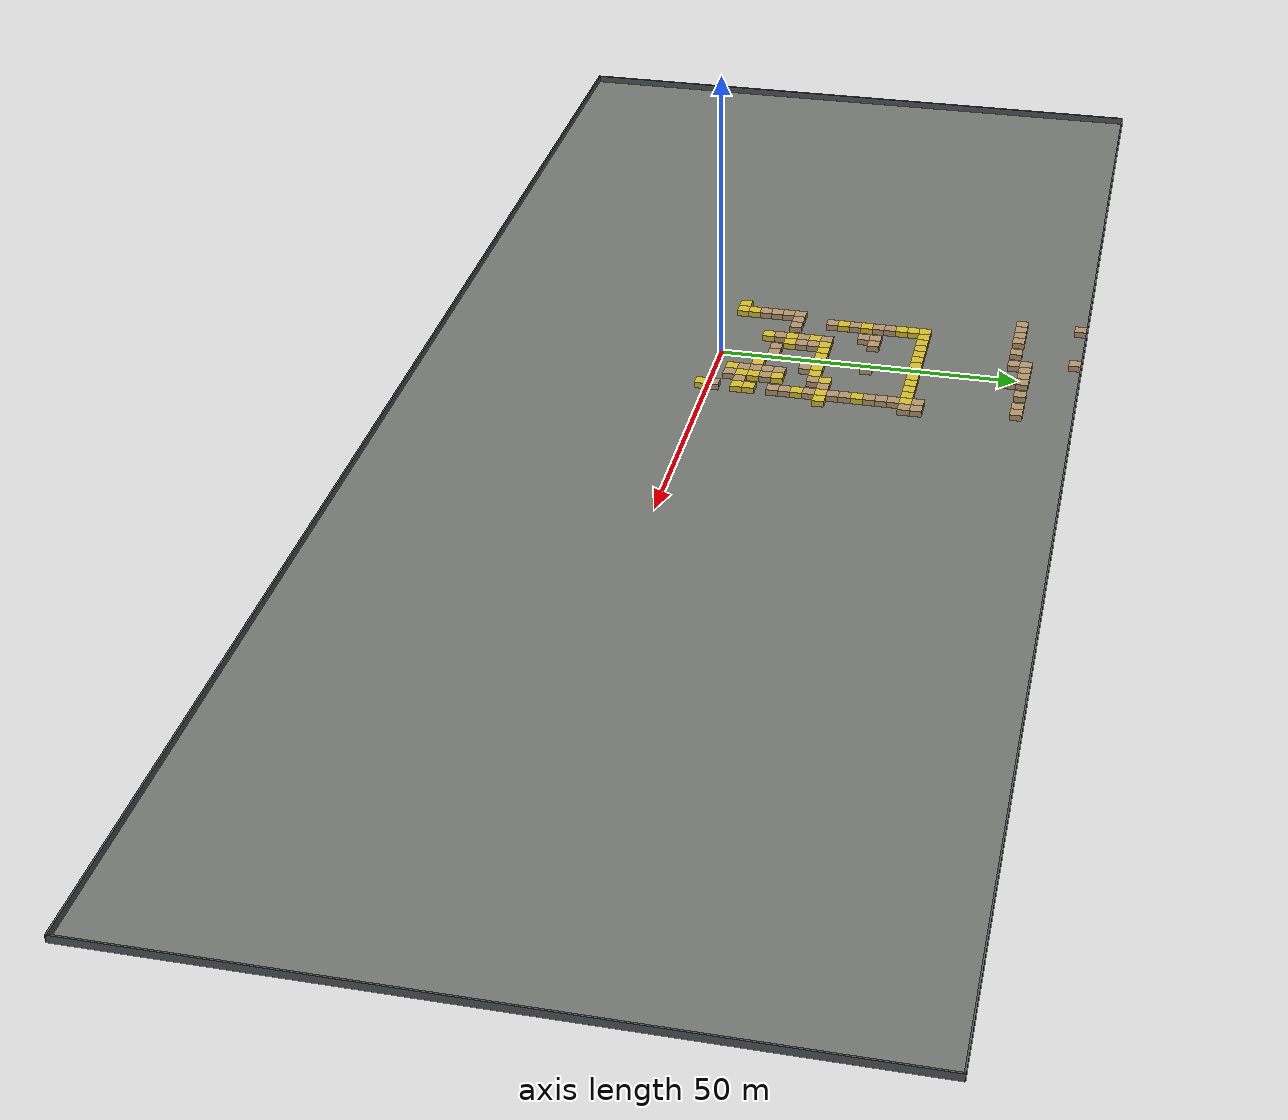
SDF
<sdf version="1.6">
 <world name="map5_factory_approx">
  <model name="map5_floor">
   <static>true</static>
   <link name="floor">
    <pose>23.740 5.509 -0.020 0 0 0</pose>
    <collision name="collision"><geometry><box><size>265.900 108.900 0.040</size></box></geometry></collision>
    <visual name="visual">
     <geometry><box><size>265.900 108.900 0.040</size></box></geometry>
     <material><ambient>0.45 0.46 0.44 1</ambient><diffuse>0.45 0.46 0.44 1</diffuse></material>
    </visual>
   </link>
  </model>
  <model name="map5_perimeter_walls">
   <static>true</static>
   <link name="west_wall">
    <pose>-109.335 5.509 0.600 0 0 0</pose>
    <collision name="collision"><geometry><box><size>0.250 109.400 1.200</size></box></geometry></collision>
    <visual name="visual">
     <geometry><box><size>0.250 109.400 1.200</size></box></geometry>
     <material><ambient>0.32 0.34 0.36 1</ambient><diffuse>0.32 0.34 0.36 1</diffuse></material>
    </visual>
   </link>
   <link name="east_wall">
    <pose>156.815 5.509 0.600 0 0 0</pose>
    <collision name="collision"><geometry><box><size>0.250 109.400 1.200</size></box></geometry></collision>
    <visual name="visual">
     <geometry><box><size>0.250 109.400 1.200</size></box></geometry>
     <material><ambient>0.32 0.34 0.36 1</ambient><diffuse>0.32 0.34 0.36 1</diffuse></material>
    </visual>
   </link>
   <link name="south_wall">
    <pose>23.740 -49.066 0.600 0 0 0</pose>
    <collision name="collision"><geometry><box><size>266.400 0.250 1.200</size></box></geometry></collision>
    <visual name="visual">
     <geometry><box><size>266.400 0.250 1.200</size></box></geometry>
     <material><ambient>0.32 0.34 0.36 1</ambient><diffuse>0.32 0.34 0.36 1</diffuse></material>
    </visual>
   </link>
   <link name="north_wall">
    <pose>23.740 60.084 0.600 0 0 0</pose>
    <collision name="collision"><geometry><box><size>266.400 0.250 1.200</size></box></geometry></collision>
    <visual name="visual">
     <geometry><box><size>266.400 0.250 1.200</size></box></geometry>
     <material><ambient>0.32 0.34 0.36 1</ambient><diffuse>0.32 0.34 0.36 1</diffuse></material>
    </visual>
   </link>
  </model>
  <model name="map5_obstacle_blocks">
   <static>true</static>
   <link name="obs_0055_0026">
    <pose>1.790 6.959 0.500 0 0 0</pose>
    <collision name="collision"><geometry><box><size>2.000 2.000 1.000</size></box></geometry></collision>
    <visual name="visual">
     <geometry><box><size>2.000 2.000 1.000</size></box></geometry>
     <material><ambient>0.84 0.74 0.18 1</ambient><diffuse>0.84 0.74 0.18 1</diffuse></material>
    </visual>
   </link>
   <link name="obs_0058_0024">
    <pose>7.790 10.959 0.500 0 0 0</pose>
    <collision name="collision"><geometry><box><size>2.000 2.000 1.000</size></box></geometry></collision>
    <visual name="visual">
     <geometry><box><size>2.000 2.000 1.000</size></box></geometry>
     <material><ambient>0.84 0.74 0.18 1</ambient><diffuse>0.84 0.74 0.18 1</diffuse></material>
    </visual>
   </link>
   <link name="obs_0060_0013">
    <pose>11.790 32.959 0.500 0 0 0</pose>
    <collision name="collision"><geometry><box><size>2.000 2.000 1.000</size></box></geometry></collision>
    <visual name="visual">
     <geometry><box><size>2.000 2.000 1.000</size></box></geometry>
     <material><ambient>0.84 0.74 0.18 1</ambient><diffuse>0.84 0.74 0.18 1</diffuse></material>
    </visual>
   </link>
   <link name="obs_0055_0013">
    <pose>1.790 32.959 0.500 0 0 0</pose>
    <collision name="collision"><geometry><box><size>2.000 2.000 1.000</size></box></geometry></collision>
    <visual name="visual">
     <geometry><box><size>2.000 2.000 1.000</size></box></geometry>
     <material><ambient>0.84 0.74 0.18 1</ambient><diffuse>0.84 0.74 0.18 1</diffuse></material>
    </visual>
   </link>
   <link name="obs_0058_0026">
    <pose>7.790 6.959 0.500 0 0 0</pose>
    <collision name="collision"><geometry><box><size>2.000 2.000 1.000</size></box></geometry></collision>
    <visual name="visual">
     <geometry><box><size>2.000 2.000 1.000</size></box></geometry>
     <material><ambient>0.84 0.74 0.18 1</ambient><diffuse>0.84 0.74 0.18 1</diffuse></material>
    </visual>
   </link>
   <link name="obs_0056_0026">
    <pose>3.790 6.959 0.500 0 0 0</pose>
    <collision name="collision"><geometry><box><size>2.000 2.000 1.000</size></box></geometry></collision>
    <visual name="visual">
     <geometry><box><size>2.000 2.000 1.000</size></box></geometry>
     <material><ambient>0.84 0.74 0.18 1</ambient><diffuse>0.84 0.74 0.18 1</diffuse></material>
    </visual>
   </link>
   <link name="obs_0058_0027">
    <pose>7.790 4.959 0.500 0 0 0</pose>
    <collision name="collision"><geometry><box><size>2.000 2.000 1.000</size></box></geometry></collision>
    <visual name="visual">
     <geometry><box><size>2.000 2.000 1.000</size></box></geometry>
     <material><ambient>0.84 0.74 0.18 1</ambient><diffuse>0.84 0.74 0.18 1</diffuse></material>
    </visual>
   </link>
   <link name="obs_0051_0013">
    <pose>-6.210 32.959 0.500 0 0 0</pose>
    <collision name="collision"><geometry><box><size>2.000 2.000 1.000</size></box></geometry></collision>
    <visual name="visual">
     <geometry><box><size>2.000 2.000 1.000</size></box></geometry>
     <material><ambient>0.84 0.74 0.18 1</ambient><diffuse>0.84 0.74 0.18 1</diffuse></material>
    </visual>
   </link>
   <link name="obs_0050_0013">
    <pose>-8.210 32.959 0.500 0 0 0</pose>
    <collision name="collision"><geometry><box><size>2.000 2.000 1.000</size></box></geometry></collision>
    <visual name="visual">
     <geometry><box><size>2.000 2.000 1.000</size></box></geometry>
     <material><ambient>0.84 0.74 0.18 1</ambient><diffuse>0.84 0.74 0.18 1</diffuse></material>
    </visual>
   </link>
   <link name="obs_0048_0013">
    <pose>-12.210 32.959 0.500 0 0 0</pose>
    <collision name="collision"><geometry><box><size>2.000 2.000 1.000</size></box></geometry></collision>
    <visual name="visual">
     <geometry><box><size>2.000 2.000 1.000</size></box></geometry>
     <material><ambient>0.84 0.74 0.18 1</ambient><diffuse>0.84 0.74 0.18 1</diffuse></material>
    </visual>
   </link>
   <link name="obs_0049_0013">
    <pose>-10.210 32.959 0.500 0 0 0</pose>
    <collision name="collision"><geometry><box><size>2.000 2.000 1.000</size></box></geometry></collision>
    <visual name="visual">
     <geometry><box><size>2.000 2.000 1.000</size></box></geometry>
     <material><ambient>0.84 0.74 0.18 1</ambient><diffuse>0.84 0.74 0.18 1</diffuse></material>
    </visual>
   </link>
   <link name="obs_0060_0026">
    <pose>11.790 6.959 0.500 0 0 0</pose>
    <collision name="collision"><geometry><box><size>2.000 2.000 1.000</size></box></geometry></collision>
    <visual name="visual">
     <geometry><box><size>2.000 2.000 1.000</size></box></geometry>
     <material><ambient>0.84 0.74 0.18 1</ambient><diffuse>0.84 0.74 0.18 1</diffuse></material>
    </visual>
   </link>
   <link name="obs_0056_0013">
    <pose>3.790 32.959 0.500 0 0 0</pose>
    <collision name="collision"><geometry><box><size>2.000 2.000 1.000</size></box></geometry></collision>
    <visual name="visual">
     <geometry><box><size>2.000 2.000 1.000</size></box></geometry>
     <material><ambient>0.84 0.74 0.18 1</ambient><diffuse>0.84 0.74 0.18 1</diffuse></material>
    </visual>
   </link>
   <link name="obs_0060_0030">
    <pose>11.790 -1.041 0.500 0 0 0</pose>
    <collision name="collision"><geometry><box><size>2.000 2.000 1.000</size></box></geometry></collision>
    <visual name="visual">
     <geometry><box><size>2.000 2.000 1.000</size></box></geometry>
     <material><ambient>0.84 0.74 0.18 1</ambient><diffuse>0.84 0.74 0.18 1</diffuse></material>
    </visual>
   </link>
   <link name="obs_0060_0017">
    <pose>11.790 24.959 0.500 0 0 0</pose>
    <collision name="collision"><geometry><box><size>2.000 2.000 1.000</size></box></geometry></collision>
    <visual name="visual">
     <geometry><box><size>2.000 2.000 1.000</size></box></geometry>
     <material><ambient>0.84 0.74 0.18 1</ambient><diffuse>0.84 0.74 0.18 1</diffuse></material>
    </visual>
   </link>
   <link name="obs_0057_0028">
    <pose>5.790 2.959 0.500 0 0 0</pose>
    <collision name="collision"><geometry><box><size>2.000 2.000 1.000</size></box></geometry></collision>
    <visual name="visual">
     <geometry><box><size>2.000 2.000 1.000</size></box></geometry>
     <material><ambient>0.84 0.74 0.18 1</ambient><diffuse>0.84 0.74 0.18 1</diffuse></material>
    </visual>
   </link>
   <link name="obs_0058_0013">
    <pose>7.790 32.959 0.500 0 0 0</pose>
    <collision name="collision"><geometry><box><size>2.000 2.000 1.000</size></box></geometry></collision>
    <visual name="visual">
     <geometry><box><size>2.000 2.000 1.000</size></box></geometry>
     <material><ambient>0.84 0.74 0.18 1</ambient><diffuse>0.84 0.74 0.18 1</diffuse></material>
    </visual>
   </link>
   <link name="obs_0059_0013">
    <pose>9.790 32.959 0.500 0 0 0</pose>
    <collision name="collision"><geometry><box><size>2.000 2.000 1.000</size></box></geometry></collision>
    <visual name="visual">
     <geometry><box><size>2.000 2.000 1.000</size></box></geometry>
     <material><ambient>0.84 0.74 0.18 1</ambient><diffuse>0.84 0.74 0.18 1</diffuse></material>
    </visual>
   </link>
   <link name="obs_0054_0013">
    <pose>-0.210 32.959 0.500 0 0 0</pose>
    <collision name="collision"><geometry><box><size>2.000 2.000 1.000</size></box></geometry></collision>
    <visual name="visual">
     <geometry><box><size>2.000 2.000 1.000</size></box></geometry>
     <material><ambient>0.84 0.74 0.18 1</ambient><diffuse>0.84 0.74 0.18 1</diffuse></material>
    </visual>
   </link>
   <link name="obs_0053_0013">
    <pose>-2.210 32.959 0.500 0 0 0</pose>
    <collision name="collision"><geometry><box><size>2.000 2.000 1.000</size></box></geometry></collision>
    <visual name="visual">
     <geometry><box><size>2.000 2.000 1.000</size></box></geometry>
     <material><ambient>0.84 0.74 0.18 1</ambient><diffuse>0.84 0.74 0.18 1</diffuse></material>
    </visual>
   </link>
   <link name="obs_0052_0013">
    <pose>-4.210 32.959 0.500 0 0 0</pose>
    <collision name="collision"><geometry><box><size>2.000 2.000 1.000</size></box></geometry></collision>
    <visual name="visual">
     <geometry><box><size>2.000 2.000 1.000</size></box></geometry>
     <material><ambient>0.84 0.74 0.18 1</ambient><diffuse>0.84 0.74 0.18 1</diffuse></material>
    </visual>
   </link>
   <link name="obs_0060_0022">
    <pose>11.790 14.959 0.500 0 0 0</pose>
    <collision name="collision"><geometry><box><size>2.000 2.000 1.000</size></box></geometry></collision>
    <visual name="visual">
     <geometry><box><size>2.000 2.000 1.000</size></box></geometry>
     <material><ambient>0.84 0.74 0.18 1</ambient><diffuse>0.84 0.74 0.18 1</diffuse></material>
    </visual>
   </link>
   <link name="obs_0058_0020">
    <pose>7.790 18.959 0.500 0 0 0</pose>
    <collision name="collision"><geometry><box><size>2.000 2.000 1.000</size></box></geometry></collision>
    <visual name="visual">
     <geometry><box><size>2.000 2.000 1.000</size></box></geometry>
     <material><ambient>0.84 0.74 0.18 1</ambient><diffuse>0.84 0.74 0.18 1</diffuse></material>
    </visual>
   </link>
   <link name="obs_0057_0013">
    <pose>5.790 32.959 0.500 0 0 0</pose>
    <collision name="collision"><geometry><box><size>2.000 2.000 1.000</size></box></geometry></collision>
    <visual name="visual">
     <geometry><box><size>2.000 2.000 1.000</size></box></geometry>
     <material><ambient>0.84 0.74 0.18 1</ambient><diffuse>0.84 0.74 0.18 1</diffuse></material>
    </visual>
   </link>
   <link name="obs_0051_0024">
    <pose>-6.210 10.959 0.500 0 0 0</pose>
    <collision name="collision"><geometry><box><size>2.000 2.000 1.000</size></box></geometry></collision>
    <visual name="visual">
     <geometry><box><size>2.000 2.000 1.000</size></box></geometry>
     <material><ambient>0.84 0.74 0.18 1</ambient><diffuse>0.84 0.74 0.18 1</diffuse></material>
    </visual>
   </link>
   <link name="obs_0057_0021">
    <pose>5.790 16.959 0.500 0 0 0</pose>
    <collision name="collision"><geometry><box><size>2.000 2.000 1.000</size></box></geometry></collision>
    <visual name="visual">
     <geometry><box><size>2.000 2.000 1.000</size></box></geometry>
     <material><ambient>0.84 0.74 0.18 1</ambient><diffuse>0.84 0.74 0.18 1</diffuse></material>
    </visual>
   </link>
   <link name="obs_0053_0021">
    <pose>-2.210 16.959 0.500 0 0 0</pose>
    <collision name="collision"><geometry><box><size>2.000 2.000 1.000</size></box></geometry></collision>
    <visual name="visual">
     <geometry><box><size>2.000 2.000 1.000</size></box></geometry>
     <material><ambient>0.84 0.74 0.18 1</ambient><diffuse>0.84 0.74 0.18 1</diffuse></material>
    </visual>
   </link>
   <link name="obs_0048_0020">
    <pose>-12.210 18.959 0.500 0 0 0</pose>
    <collision name="collision"><geometry><box><size>2.000 2.000 1.000</size></box></geometry></collision>
    <visual name="visual">
     <geometry><box><size>2.000 2.000 1.000</size></box></geometry>
     <material><ambient>0.84 0.74 0.18 1</ambient><diffuse>0.84 0.74 0.18 1</diffuse></material>
    </visual>
   </link>
   <link name="obs_0048_0018">
    <pose>-12.210 22.959 0.500 0 0 0</pose>
    <collision name="collision"><geometry><box><size>2.000 2.000 1.000</size></box></geometry></collision>
    <visual name="visual">
     <geometry><box><size>2.000 2.000 1.000</size></box></geometry>
     <material><ambient>0.84 0.74 0.18 1</ambient><diffuse>0.84 0.74 0.18 1</diffuse></material>
    </visual>
   </link>
   <link name="obs_0047_0028">
    <pose>-14.210 2.959 0.500 0 0 0</pose>
    <collision name="collision"><geometry><box><size>2.000 2.000 1.000</size></box></geometry></collision>
    <visual name="visual">
     <geometry><box><size>2.000 2.000 1.000</size></box></geometry>
     <material><ambient>0.84 0.74 0.18 1</ambient><diffuse>0.84 0.74 0.18 1</diffuse></material>
    </visual>
   </link>
   <link name="obs_0046_0029">
    <pose>-16.210 0.959 0.500 0 0 0</pose>
    <collision name="collision"><geometry><box><size>2.000 2.000 1.000</size></box></geometry></collision>
    <visual name="visual">
     <geometry><box><size>2.000 2.000 1.000</size></box></geometry>
     <material><ambient>0.84 0.74 0.18 1</ambient><diffuse>0.84 0.74 0.18 1</diffuse></material>
    </visual>
   </link>
   <link name="obs_0055_0021">
    <pose>1.790 16.959 0.500 0 0 0</pose>
    <collision name="collision"><geometry><box><size>2.000 2.000 1.000</size></box></geometry></collision>
    <visual name="visual">
     <geometry><box><size>2.000 2.000 1.000</size></box></geometry>
     <material><ambient>0.84 0.74 0.18 1</ambient><diffuse>0.84 0.74 0.18 1</diffuse></material>
    </visual>
   </link>
   <link name="obs_0060_0027">
    <pose>11.790 4.959 0.500 0 0 0</pose>
    <collision name="collision"><geometry><box><size>2.000 2.000 1.000</size></box></geometry></collision>
    <visual name="visual">
     <geometry><box><size>2.000 2.000 1.000</size></box></geometry>
     <material><ambient>0.84 0.74 0.18 1</ambient><diffuse>0.84 0.74 0.18 1</diffuse></material>
    </visual>
   </link>
   <link name="obs_0048_0015">
    <pose>-12.210 28.959 0.500 0 0 0</pose>
    <collision name="collision"><geometry><box><size>2.000 2.000 1.000</size></box></geometry></collision>
    <visual name="visual">
     <geometry><box><size>2.000 2.000 1.000</size></box></geometry>
     <material><ambient>0.84 0.74 0.18 1</ambient><diffuse>0.84 0.74 0.18 1</diffuse></material>
    </visual>
   </link>
   <link name="obs_0056_0021">
    <pose>3.790 16.959 0.500 0 0 0</pose>
    <collision name="collision"><geometry><box><size>2.000 2.000 1.000</size></box></geometry></collision>
    <visual name="visual">
     <geometry><box><size>2.000 2.000 1.000</size></box></geometry>
     <material><ambient>0.84 0.74 0.18 1</ambient><diffuse>0.84 0.74 0.18 1</diffuse></material>
    </visual>
   </link>
   <link name="obs_0051_0026">
    <pose>-6.210 6.959 0.500 0 0 0</pose>
    <collision name="collision"><geometry><box><size>2.000 2.000 1.000</size></box></geometry></collision>
    <visual name="visual">
     <geometry><box><size>2.000 2.000 1.000</size></box></geometry>
     <material><ambient>0.84 0.74 0.18 1</ambient><diffuse>0.84 0.74 0.18 1</diffuse></material>
    </visual>
   </link>
   <link name="obs_0061_0020">
    <pose>13.790 18.959 0.500 0 0 0</pose>
    <collision name="collision"><geometry><box><size>2.000 2.000 1.000</size></box></geometry></collision>
    <visual name="visual">
     <geometry><box><size>2.000 2.000 1.000</size></box></geometry>
     <material><ambient>0.84 0.74 0.18 1</ambient><diffuse>0.84 0.74 0.18 1</diffuse></material>
    </visual>
   </link>
   <link name="obs_0054_0021">
    <pose>-0.210 16.959 0.500 0 0 0</pose>
    <collision name="collision"><geometry><box><size>2.000 2.000 1.000</size></box></geometry></collision>
    <visual name="visual">
     <geometry><box><size>2.000 2.000 1.000</size></box></geometry>
     <material><ambient>0.84 0.74 0.18 1</ambient><diffuse>0.84 0.74 0.18 1</diffuse></material>
    </visual>
   </link>
   <link name="obs_0052_0021">
    <pose>-4.210 16.959 0.500 0 0 0</pose>
    <collision name="collision"><geometry><box><size>2.000 2.000 1.000</size></box></geometry></collision>
    <visual name="visual">
     <geometry><box><size>2.000 2.000 1.000</size></box></geometry>
     <material><ambient>0.84 0.74 0.18 1</ambient><diffuse>0.84 0.74 0.18 1</diffuse></material>
    </visual>
   </link>
   <link name="obs_0052_0024">
    <pose>-4.210 10.959 0.500 0 0 0</pose>
    <collision name="collision"><geometry><box><size>2.000 2.000 1.000</size></box></geometry></collision>
    <visual name="visual">
     <geometry><box><size>2.000 2.000 1.000</size></box></geometry>
     <material><ambient>0.84 0.74 0.18 1</ambient><diffuse>0.84 0.74 0.18 1</diffuse></material>
    </visual>
   </link>
   <link name="obs_0051_0022">
    <pose>-6.210 14.959 0.500 0 0 0</pose>
    <collision name="collision"><geometry><box><size>2.000 2.000 1.000</size></box></geometry></collision>
    <visual name="visual">
     <geometry><box><size>2.000 2.000 1.000</size></box></geometry>
     <material><ambient>0.84 0.74 0.18 1</ambient><diffuse>0.84 0.74 0.18 1</diffuse></material>
    </visual>
   </link>
   <link name="obs_0047_0029">
    <pose>-14.210 0.959 0.500 0 0 0</pose>
    <collision name="collision"><geometry><box><size>2.000 2.000 1.000</size></box></geometry></collision>
    <visual name="visual">
     <geometry><box><size>2.000 2.000 1.000</size></box></geometry>
     <material><ambient>0.84 0.74 0.18 1</ambient><diffuse>0.84 0.74 0.18 1</diffuse></material>
    </visual>
   </link>
   <link name="obs_0048_0014">
    <pose>-12.210 30.959 0.500 0 0 0</pose>
    <collision name="collision"><geometry><box><size>2.000 2.000 1.000</size></box></geometry></collision>
    <visual name="visual">
     <geometry><box><size>2.000 2.000 1.000</size></box></geometry>
     <material><ambient>0.84 0.74 0.18 1</ambient><diffuse>0.84 0.74 0.18 1</diffuse></material>
    </visual>
   </link>
   <link name="obs_0060_0020">
    <pose>11.790 18.959 0.500 0 0 0</pose>
    <collision name="collision"><geometry><box><size>2.000 2.000 1.000</size></box></geometry></collision>
    <visual name="visual">
     <geometry><box><size>2.000 2.000 1.000</size></box></geometry>
     <material><ambient>0.84 0.74 0.18 1</ambient><diffuse>0.84 0.74 0.18 1</diffuse></material>
    </visual>
   </link>
   <link name="obs_0051_0023">
    <pose>-6.210 12.959 0.500 0 0 0</pose>
    <collision name="collision"><geometry><box><size>2.000 2.000 1.000</size></box></geometry></collision>
    <visual name="visual">
     <geometry><box><size>2.000 2.000 1.000</size></box></geometry>
     <material><ambient>0.70 0.58 0.42 1</ambient><diffuse>0.70 0.58 0.42 1</diffuse></material>
    </visual>
   </link>
   <link name="obs_0048_0019">
    <pose>-12.210 20.959 0.500 0 0 0</pose>
    <collision name="collision"><geometry><box><size>2.000 2.000 1.000</size></box></geometry></collision>
    <visual name="visual">
     <geometry><box><size>2.000 2.000 1.000</size></box></geometry>
     <material><ambient>0.70 0.58 0.42 1</ambient><diffuse>0.70 0.58 0.42 1</diffuse></material>
    </visual>
   </link>
   <link name="obs_0048_0017">
    <pose>-12.210 24.959 0.500 0 0 0</pose>
    <collision name="collision"><geometry><box><size>2.000 2.000 1.000</size></box></geometry></collision>
    <visual name="visual">
     <geometry><box><size>2.000 2.000 1.000</size></box></geometry>
     <material><ambient>0.70 0.58 0.42 1</ambient><diffuse>0.70 0.58 0.42 1</diffuse></material>
    </visual>
   </link>
   <link name="obs_0047_0026">
    <pose>-14.210 6.959 0.500 0 0 0</pose>
    <collision name="collision"><geometry><box><size>2.000 2.000 1.000</size></box></geometry></collision>
    <visual name="visual">
     <geometry><box><size>2.000 2.000 1.000</size></box></geometry>
     <material><ambient>0.70 0.58 0.42 1</ambient><diffuse>0.70 0.58 0.42 1</diffuse></material>
    </visual>
   </link>
   <link name="obs_0061_0013">
    <pose>13.790 32.959 0.500 0 0 0</pose>
    <collision name="collision"><geometry><box><size>2.000 2.000 1.000</size></box></geometry></collision>
    <visual name="visual">
     <geometry><box><size>2.000 2.000 1.000</size></box></geometry>
     <material><ambient>0.70 0.58 0.42 1</ambient><diffuse>0.70 0.58 0.42 1</diffuse></material>
    </visual>
   </link>
   <link name="obs_0051_0025">
    <pose>-6.210 8.959 0.500 0 0 0</pose>
    <collision name="collision"><geometry><box><size>2.000 2.000 1.000</size></box></geometry></collision>
    <visual name="visual">
     <geometry><box><size>2.000 2.000 1.000</size></box></geometry>
     <material><ambient>0.70 0.58 0.42 1</ambient><diffuse>0.70 0.58 0.42 1</diffuse></material>
    </visual>
   </link>
   <link name="obs_0055_0017">
    <pose>1.790 24.959 0.500 0 0 0</pose>
    <collision name="collision"><geometry><box><size>2.000 2.000 1.000</size></box></geometry></collision>
    <visual name="visual">
     <geometry><box><size>2.000 2.000 1.000</size></box></geometry>
     <material><ambient>0.70 0.58 0.42 1</ambient><diffuse>0.70 0.58 0.42 1</diffuse></material>
    </visual>
   </link>
   <link name="obs_0060_0015">
    <pose>11.790 28.959 0.500 0 0 0</pose>
    <collision name="collision"><geometry><box><size>2.000 2.000 1.000</size></box></geometry></collision>
    <visual name="visual">
     <geometry><box><size>2.000 2.000 1.000</size></box></geometry>
     <material><ambient>0.70 0.58 0.42 1</ambient><diffuse>0.70 0.58 0.42 1</diffuse></material>
    </visual>
   </link>
   <link name="obs_0059_0020">
    <pose>9.790 18.959 0.500 0 0 0</pose>
    <collision name="collision"><geometry><box><size>2.000 2.000 1.000</size></box></geometry></collision>
    <visual name="visual">
     <geometry><box><size>2.000 2.000 1.000</size></box></geometry>
     <material><ambient>0.70 0.58 0.42 1</ambient><diffuse>0.70 0.58 0.42 1</diffuse></material>
    </visual>
   </link>
   <link name="obs_0047_0027">
    <pose>-14.210 4.959 0.500 0 0 0</pose>
    <collision name="collision"><geometry><box><size>2.000 2.000 1.000</size></box></geometry></collision>
    <visual name="visual">
     <geometry><box><size>2.000 2.000 1.000</size></box></geometry>
     <material><ambient>0.70 0.58 0.42 1</ambient><diffuse>0.70 0.58 0.42 1</diffuse></material>
    </visual>
   </link>
   <link name="obs_0052_0023">
    <pose>-4.210 12.959 0.500 0 0 0</pose>
    <collision name="collision"><geometry><box><size>2.000 2.000 1.000</size></box></geometry></collision>
    <visual name="visual">
     <geometry><box><size>2.000 2.000 1.000</size></box></geometry>
     <material><ambient>0.70 0.58 0.42 1</ambient><diffuse>0.70 0.58 0.42 1</diffuse></material>
    </visual>
   </link>
   <link name="obs_0047_0024">
    <pose>-14.210 10.959 0.500 0 0 0</pose>
    <collision name="collision"><geometry><box><size>2.000 2.000 1.000</size></box></geometry></collision>
    <visual name="visual">
     <geometry><box><size>2.000 2.000 1.000</size></box></geometry>
     <material><ambient>0.70 0.58 0.42 1</ambient><diffuse>0.70 0.58 0.42 1</diffuse></material>
    </visual>
   </link>
   <link name="obs_0061_0012">
    <pose>13.790 34.959 0.500 0 0 0</pose>
    <collision name="collision"><geometry><box><size>2.000 2.000 1.000</size></box></geometry></collision>
    <visual name="visual">
     <geometry><box><size>2.000 2.000 1.000</size></box></geometry>
     <material><ambient>0.70 0.58 0.42 1</ambient><diffuse>0.70 0.58 0.42 1</diffuse></material>
    </visual>
   </link>
   <link name="obs_0048_0016">
    <pose>-12.210 26.959 0.500 0 0 0</pose>
    <collision name="collision"><geometry><box><size>2.000 2.000 1.000</size></box></geometry></collision>
    <visual name="visual">
     <geometry><box><size>2.000 2.000 1.000</size></box></geometry>
     <material><ambient>0.70 0.58 0.42 1</ambient><diffuse>0.70 0.58 0.42 1</diffuse></material>
    </visual>
   </link>
   <link name="obs_0055_0022">
    <pose>1.790 14.959 0.500 0 0 0</pose>
    <collision name="collision"><geometry><box><size>2.000 2.000 1.000</size></box></geometry></collision>
    <visual name="visual">
     <geometry><box><size>2.000 2.000 1.000</size></box></geometry>
     <material><ambient>0.70 0.58 0.42 1</ambient><diffuse>0.70 0.58 0.42 1</diffuse></material>
    </visual>
   </link>
   <link name="obs_0048_0021">
    <pose>-12.210 16.959 0.500 0 0 0</pose>
    <collision name="collision"><geometry><box><size>2.000 2.000 1.000</size></box></geometry></collision>
    <visual name="visual">
     <geometry><box><size>2.000 2.000 1.000</size></box></geometry>
     <material><ambient>0.70 0.58 0.42 1</ambient><diffuse>0.70 0.58 0.42 1</diffuse></material>
    </visual>
   </link>
   <link name="obs_0057_0027">
    <pose>5.790 4.959 0.500 0 0 0</pose>
    <collision name="collision"><geometry><box><size>2.000 2.000 1.000</size></box></geometry></collision>
    <visual name="visual">
     <geometry><box><size>2.000 2.000 1.000</size></box></geometry>
     <material><ambient>0.70 0.58 0.42 1</ambient><diffuse>0.70 0.58 0.42 1</diffuse></material>
    </visual>
   </link>
   <link name="obs_0055_0004">
    <pose>1.790 50.959 0.500 0 0 0</pose>
    <collision name="collision"><geometry><box><size>2.000 2.000 1.000</size></box></geometry></collision>
    <visual name="visual">
     <geometry><box><size>2.000 2.000 1.000</size></box></geometry>
     <material><ambient>0.70 0.58 0.42 1</ambient><diffuse>0.70 0.58 0.42 1</diffuse></material>
    </visual>
   </link>
   <link name="obs_0051_0017">
    <pose>-6.210 24.959 0.500 0 0 0</pose>
    <collision name="collision"><geometry><box><size>2.000 2.000 1.000</size></box></geometry></collision>
    <visual name="visual">
     <geometry><box><size>2.000 2.000 1.000</size></box></geometry>
     <material><ambient>0.70 0.58 0.42 1</ambient><diffuse>0.70 0.58 0.42 1</diffuse></material>
    </visual>
   </link>
   <link name="obs_0060_0014">
    <pose>11.790 30.959 0.500 0 0 0</pose>
    <collision name="collision"><geometry><box><size>2.000 2.000 1.000</size></box></geometry></collision>
    <visual name="visual">
     <geometry><box><size>2.000 2.000 1.000</size></box></geometry>
     <material><ambient>0.70 0.58 0.42 1</ambient><diffuse>0.70 0.58 0.42 1</diffuse></material>
    </visual>
   </link>
   <link name="obs_0060_0029">
    <pose>11.790 0.959 0.500 0 0 0</pose>
    <collision name="collision"><geometry><box><size>2.000 2.000 1.000</size></box></geometry></collision>
    <visual name="visual">
     <geometry><box><size>2.000 2.000 1.000</size></box></geometry>
     <material><ambient>0.70 0.58 0.42 1</ambient><diffuse>0.70 0.58 0.42 1</diffuse></material>
    </visual>
   </link>
   <link name="obs_0060_0018">
    <pose>11.790 22.959 0.500 0 0 0</pose>
    <collision name="collision"><geometry><box><size>2.000 2.000 1.000</size></box></geometry></collision>
    <visual name="visual">
     <geometry><box><size>2.000 2.000 1.000</size></box></geometry>
     <material><ambient>0.70 0.58 0.42 1</ambient><diffuse>0.70 0.58 0.42 1</diffuse></material>
    </visual>
   </link>
   <link name="obs_0058_0025">
    <pose>7.790 8.959 0.500 0 0 0</pose>
    <collision name="collision"><geometry><box><size>2.000 2.000 1.000</size></box></geometry></collision>
    <visual name="visual">
     <geometry><box><size>2.000 2.000 1.000</size></box></geometry>
     <material><ambient>0.70 0.58 0.42 1</ambient><diffuse>0.70 0.58 0.42 1</diffuse></material>
    </visual>
   </link>
   <link name="obs_0048_0024">
    <pose>-12.210 10.959 0.500 0 0 0</pose>
    <collision name="collision"><geometry><box><size>2.000 2.000 1.000</size></box></geometry></collision>
    <visual name="visual">
     <geometry><box><size>2.000 2.000 1.000</size></box></geometry>
     <material><ambient>0.70 0.58 0.42 1</ambient><diffuse>0.70 0.58 0.42 1</diffuse></material>
    </visual>
   </link>
   <link name="obs_0060_0024">
    <pose>11.790 10.959 0.500 0 0 0</pose>
    <collision name="collision"><geometry><box><size>2.000 2.000 1.000</size></box></geometry></collision>
    <visual name="visual">
     <geometry><box><size>2.000 2.000 1.000</size></box></geometry>
     <material><ambient>0.70 0.58 0.42 1</ambient><diffuse>0.70 0.58 0.42 1</diffuse></material>
    </visual>
   </link>
   <link name="obs_0057_0026">
    <pose>5.790 6.959 0.500 0 0 0</pose>
    <collision name="collision"><geometry><box><size>2.000 2.000 1.000</size></box></geometry></collision>
    <visual name="visual">
     <geometry><box><size>2.000 2.000 1.000</size></box></geometry>
     <material><ambient>0.70 0.58 0.42 1</ambient><diffuse>0.70 0.58 0.42 1</diffuse></material>
    </visual>
   </link>
   <link name="obs_0059_0027">
    <pose>9.790 4.959 0.500 0 0 0</pose>
    <collision name="collision"><geometry><box><size>2.000 2.000 1.000</size></box></geometry></collision>
    <visual name="visual">
     <geometry><box><size>2.000 2.000 1.000</size></box></geometry>
     <material><ambient>0.70 0.58 0.42 1</ambient><diffuse>0.70 0.58 0.42 1</diffuse></material>
    </visual>
   </link>
   <link name="obs_0058_0021">
    <pose>7.790 16.959 0.500 0 0 0</pose>
    <collision name="collision"><geometry><box><size>2.000 2.000 1.000</size></box></geometry></collision>
    <visual name="visual">
     <geometry><box><size>2.000 2.000 1.000</size></box></geometry>
     <material><ambient>0.70 0.58 0.42 1</ambient><diffuse>0.70 0.58 0.42 1</diffuse></material>
    </visual>
   </link>
   <link name="obs_0049_0024">
    <pose>-10.210 10.959 0.500 0 0 0</pose>
    <collision name="collision"><geometry><box><size>2.000 2.000 1.000</size></box></geometry></collision>
    <visual name="visual">
     <geometry><box><size>2.000 2.000 1.000</size></box></geometry>
     <material><ambient>0.70 0.58 0.42 1</ambient><diffuse>0.70 0.58 0.42 1</diffuse></material>
    </visual>
   </link>
   <link name="obs_0052_0022">
    <pose>-4.210 14.959 0.500 0 0 0</pose>
    <collision name="collision"><geometry><box><size>2.000 2.000 1.000</size></box></geometry></collision>
    <visual name="visual">
     <geometry><box><size>2.000 2.000 1.000</size></box></geometry>
     <material><ambient>0.70 0.58 0.42 1</ambient><diffuse>0.70 0.58 0.42 1</diffuse></material>
    </visual>
   </link>
   <link name="obs_0060_0021">
    <pose>11.790 16.959 0.500 0 0 0</pose>
    <collision name="collision"><geometry><box><size>2.000 2.000 1.000</size></box></geometry></collision>
    <visual name="visual">
     <geometry><box><size>2.000 2.000 1.000</size></box></geometry>
     <material><ambient>0.70 0.58 0.42 1</ambient><diffuse>0.70 0.58 0.42 1</diffuse></material>
    </visual>
   </link>
   <link name="obs_0060_0016">
    <pose>11.790 26.959 0.500 0 0 0</pose>
    <collision name="collision"><geometry><box><size>2.000 2.000 1.000</size></box></geometry></collision>
    <visual name="visual">
     <geometry><box><size>2.000 2.000 1.000</size></box></geometry>
     <material><ambient>0.70 0.58 0.42 1</ambient><diffuse>0.70 0.58 0.42 1</diffuse></material>
    </visual>
   </link>
   <link name="obs_0047_0025">
    <pose>-14.210 8.959 0.500 0 0 0</pose>
    <collision name="collision"><geometry><box><size>2.000 2.000 1.000</size></box></geometry></collision>
    <visual name="visual">
     <geometry><box><size>2.000 2.000 1.000</size></box></geometry>
     <material><ambient>0.70 0.58 0.42 1</ambient><diffuse>0.70 0.58 0.42 1</diffuse></material>
    </visual>
   </link>
   <link name="obs_0056_0022">
    <pose>3.790 14.959 0.500 0 0 0</pose>
    <collision name="collision"><geometry><box><size>2.000 2.000 1.000</size></box></geometry></collision>
    <visual name="visual">
     <geometry><box><size>2.000 2.000 1.000</size></box></geometry>
     <material><ambient>0.70 0.58 0.42 1</ambient><diffuse>0.70 0.58 0.42 1</diffuse></material>
    </visual>
   </link>
   <link name="obs_0060_0004">
    <pose>11.790 50.959 0.500 0 0 0</pose>
    <collision name="collision"><geometry><box><size>2.000 2.000 1.000</size></box></geometry></collision>
    <visual name="visual">
     <geometry><box><size>2.000 2.000 1.000</size></box></geometry>
     <material><ambient>0.70 0.58 0.42 1</ambient><diffuse>0.70 0.58 0.42 1</diffuse></material>
    </visual>
   </link>
   <link name="obs_0059_0004">
    <pose>9.790 50.959 0.500 0 0 0</pose>
    <collision name="collision"><geometry><box><size>2.000 2.000 1.000</size></box></geometry></collision>
    <visual name="visual">
     <geometry><box><size>2.000 2.000 1.000</size></box></geometry>
     <material><ambient>0.70 0.58 0.42 1</ambient><diffuse>0.70 0.58 0.42 1</diffuse></material>
    </visual>
   </link>
   <link name="obs_0057_0024">
    <pose>5.790 10.959 0.500 0 0 0</pose>
    <collision name="collision"><geometry><box><size>2.000 2.000 1.000</size></box></geometry></collision>
    <visual name="visual">
     <geometry><box><size>2.000 2.000 1.000</size></box></geometry>
     <material><ambient>0.70 0.58 0.42 1</ambient><diffuse>0.70 0.58 0.42 1</diffuse></material>
    </visual>
   </link>
   <link name="obs_0060_0012">
    <pose>11.790 34.959 0.500 0 0 0</pose>
    <collision name="collision"><geometry><box><size>2.000 2.000 1.000</size></box></geometry></collision>
    <visual name="visual">
     <geometry><box><size>2.000 2.000 1.000</size></box></geometry>
     <material><ambient>0.70 0.58 0.42 1</ambient><diffuse>0.70 0.58 0.42 1</diffuse></material>
    </visual>
   </link>
   <link name="obs_0046_0005">
    <pose>-16.210 48.959 0.500 0 0 0</pose>
    <collision name="collision"><geometry><box><size>2.000 2.000 1.000</size></box></geometry></collision>
    <visual name="visual">
     <geometry><box><size>2.000 2.000 1.000</size></box></geometry>
     <material><ambient>0.70 0.58 0.42 1</ambient><diffuse>0.70 0.58 0.42 1</diffuse></material>
    </visual>
   </link>
   <link name="obs_0052_0005">
    <pose>-4.210 48.959 0.500 0 0 0</pose>
    <collision name="collision"><geometry><box><size>2.000 2.000 1.000</size></box></geometry></collision>
    <visual name="visual">
     <geometry><box><size>2.000 2.000 1.000</size></box></geometry>
     <material><ambient>0.70 0.58 0.42 1</ambient><diffuse>0.70 0.58 0.42 1</diffuse></material>
    </visual>
   </link>
   <link name="obs_0060_0023">
    <pose>11.790 12.959 0.500 0 0 0</pose>
    <collision name="collision"><geometry><box><size>2.000 2.000 1.000</size></box></geometry></collision>
    <visual name="visual">
     <geometry><box><size>2.000 2.000 1.000</size></box></geometry>
     <material><ambient>0.70 0.58 0.42 1</ambient><diffuse>0.70 0.58 0.42 1</diffuse></material>
    </visual>
   </link>
   <link name="obs_0058_0028">
    <pose>7.790 2.959 0.500 0 0 0</pose>
    <collision name="collision"><geometry><box><size>2.000 2.000 1.000</size></box></geometry></collision>
    <visual name="visual">
     <geometry><box><size>2.000 2.000 1.000</size></box></geometry>
     <material><ambient>0.70 0.58 0.42 1</ambient><diffuse>0.70 0.58 0.42 1</diffuse></material>
    </visual>
   </link>
   <link name="obs_0060_0019">
    <pose>11.790 20.959 0.500 0 0 0</pose>
    <collision name="collision"><geometry><box><size>2.000 2.000 1.000</size></box></geometry></collision>
    <visual name="visual">
     <geometry><box><size>2.000 2.000 1.000</size></box></geometry>
     <material><ambient>0.70 0.58 0.42 1</ambient><diffuse>0.70 0.58 0.42 1</diffuse></material>
    </visual>
   </link>
   <link name="obs_0057_0004">
    <pose>5.790 50.959 0.500 0 0 0</pose>
    <collision name="collision"><geometry><box><size>2.000 2.000 1.000</size></box></geometry></collision>
    <visual name="visual">
     <geometry><box><size>2.000 2.000 1.000</size></box></geometry>
     <material><ambient>0.70 0.58 0.42 1</ambient><diffuse>0.70 0.58 0.42 1</diffuse></material>
    </visual>
   </link>
   <link name="obs_0054_0025">
    <pose>-0.210 8.959 0.500 0 0 0</pose>
    <collision name="collision"><geometry><box><size>2.000 2.000 1.000</size></box></geometry></collision>
    <visual name="visual">
     <geometry><box><size>2.000 2.000 1.000</size></box></geometry>
     <material><ambient>0.70 0.58 0.42 1</ambient><diffuse>0.70 0.58 0.42 1</diffuse></material>
    </visual>
   </link>
   <link name="obs_0048_0005">
    <pose>-12.210 48.959 0.500 0 0 0</pose>
    <collision name="collision"><geometry><box><size>2.000 2.000 1.000</size></box></geometry></collision>
    <visual name="visual">
     <geometry><box><size>2.000 2.000 1.000</size></box></geometry>
     <material><ambient>0.70 0.58 0.42 1</ambient><diffuse>0.70 0.58 0.42 1</diffuse></material>
    </visual>
   </link>
   <link name="obs_0051_0000">
    <pose>-6.210 58.959 0.500 0 0 0</pose>
    <collision name="collision"><geometry><box><size>2.000 2.000 1.000</size></box></geometry></collision>
    <visual name="visual">
     <geometry><box><size>2.000 2.000 1.000</size></box></geometry>
     <material><ambient>0.70 0.58 0.42 1</ambient><diffuse>0.70 0.58 0.42 1</diffuse></material>
    </visual>
   </link>
   <link name="obs_0050_0018">
    <pose>-8.210 22.959 0.500 0 0 0</pose>
    <collision name="collision"><geometry><box><size>2.000 2.000 1.000</size></box></geometry></collision>
    <visual name="visual">
     <geometry><box><size>2.000 2.000 1.000</size></box></geometry>
     <material><ambient>0.70 0.58 0.42 1</ambient><diffuse>0.70 0.58 0.42 1</diffuse></material>
    </visual>
   </link>
   <link name="obs_0050_0005">
    <pose>-8.210 48.959 0.500 0 0 0</pose>
    <collision name="collision"><geometry><box><size>2.000 2.000 1.000</size></box></geometry></collision>
    <visual name="visual">
     <geometry><box><size>2.000 2.000 1.000</size></box></geometry>
     <material><ambient>0.70 0.58 0.42 1</ambient><diffuse>0.70 0.58 0.42 1</diffuse></material>
    </visual>
   </link>
   <link name="obs_0047_0005">
    <pose>-14.210 48.959 0.500 0 0 0</pose>
    <collision name="collision"><geometry><box><size>2.000 2.000 1.000</size></box></geometry></collision>
    <visual name="visual">
     <geometry><box><size>2.000 2.000 1.000</size></box></geometry>
     <material><ambient>0.70 0.58 0.42 1</ambient><diffuse>0.70 0.58 0.42 1</diffuse></material>
    </visual>
   </link>
   <link name="obs_0055_0005">
    <pose>1.790 48.959 0.500 0 0 0</pose>
    <collision name="collision"><geometry><box><size>2.000 2.000 1.000</size></box></geometry></collision>
    <visual name="visual">
     <geometry><box><size>2.000 2.000 1.000</size></box></geometry>
     <material><ambient>0.70 0.58 0.42 1</ambient><diffuse>0.70 0.58 0.42 1</diffuse></material>
    </visual>
   </link>
   <link name="obs_0053_0004">
    <pose>-2.210 50.959 0.500 0 0 0</pose>
    <collision name="collision"><geometry><box><size>2.000 2.000 1.000</size></box></geometry></collision>
    <visual name="visual">
     <geometry><box><size>2.000 2.000 1.000</size></box></geometry>
     <material><ambient>0.70 0.58 0.42 1</ambient><diffuse>0.70 0.58 0.42 1</diffuse></material>
    </visual>
   </link>
   <link name="obs_0051_0021">
    <pose>-6.210 16.959 0.500 0 0 0</pose>
    <collision name="collision"><geometry><box><size>2.000 2.000 1.000</size></box></geometry></collision>
    <visual name="visual">
     <geometry><box><size>2.000 2.000 1.000</size></box></geometry>
     <material><ambient>0.70 0.58 0.42 1</ambient><diffuse>0.70 0.58 0.42 1</diffuse></material>
    </visual>
   </link>
   <link name="obs_0054_0004">
    <pose>-0.210 50.959 0.500 0 0 0</pose>
    <collision name="collision"><geometry><box><size>2.000 2.000 1.000</size></box></geometry></collision>
    <visual name="visual">
     <geometry><box><size>2.000 2.000 1.000</size></box></geometry>
     <material><ambient>0.70 0.58 0.42 1</ambient><diffuse>0.70 0.58 0.42 1</diffuse></material>
    </visual>
   </link>
   <link name="obs_0052_0004">
    <pose>-4.210 50.959 0.500 0 0 0</pose>
    <collision name="collision"><geometry><box><size>2.000 2.000 1.000</size></box></geometry></collision>
    <visual name="visual">
     <geometry><box><size>2.000 2.000 1.000</size></box></geometry>
     <material><ambient>0.70 0.58 0.42 1</ambient><diffuse>0.70 0.58 0.42 1</diffuse></material>
    </visual>
   </link>
   <link name="obs_0045_0005">
    <pose>-18.210 48.959 0.500 0 0 0</pose>
    <collision name="collision"><geometry><box><size>2.000 2.000 1.000</size></box></geometry></collision>
    <visual name="visual">
     <geometry><box><size>2.000 2.000 1.000</size></box></geometry>
     <material><ambient>0.70 0.58 0.42 1</ambient><diffuse>0.70 0.58 0.42 1</diffuse></material>
    </visual>
   </link>
   <link name="obs_0057_0025">
    <pose>5.790 8.959 0.500 0 0 0</pose>
    <collision name="collision"><geometry><box><size>2.000 2.000 1.000</size></box></geometry></collision>
    <visual name="visual">
     <geometry><box><size>2.000 2.000 1.000</size></box></geometry>
     <material><ambient>0.70 0.58 0.42 1</ambient><diffuse>0.70 0.58 0.42 1</diffuse></material>
    </visual>
   </link>
   <link name="obs_0053_0025">
    <pose>-2.210 8.959 0.500 0 0 0</pose>
    <collision name="collision"><geometry><box><size>2.000 2.000 1.000</size></box></geometry></collision>
    <visual name="visual">
     <geometry><box><size>2.000 2.000 1.000</size></box></geometry>
     <material><ambient>0.70 0.58 0.42 1</ambient><diffuse>0.70 0.58 0.42 1</diffuse></material>
    </visual>
   </link>
   <link name="obs_0050_0017">
    <pose>-8.210 24.959 0.500 0 0 0</pose>
    <collision name="collision"><geometry><box><size>2.000 2.000 1.000</size></box></geometry></collision>
    <visual name="visual">
     <geometry><box><size>2.000 2.000 1.000</size></box></geometry>
     <material><ambient>0.70 0.58 0.42 1</ambient><diffuse>0.70 0.58 0.42 1</diffuse></material>
    </visual>
   </link>
   <link name="obs_0045_0000">
    <pose>-18.210 58.959 0.500 0 0 0</pose>
    <collision name="collision"><geometry><box><size>2.000 2.000 1.000</size></box></geometry></collision>
    <visual name="visual">
     <geometry><box><size>2.000 2.000 1.000</size></box></geometry>
     <material><ambient>0.70 0.58 0.42 1</ambient><diffuse>0.70 0.58 0.42 1</diffuse></material>
    </visual>
   </link>
  </model>
 </world>
</sdf>
